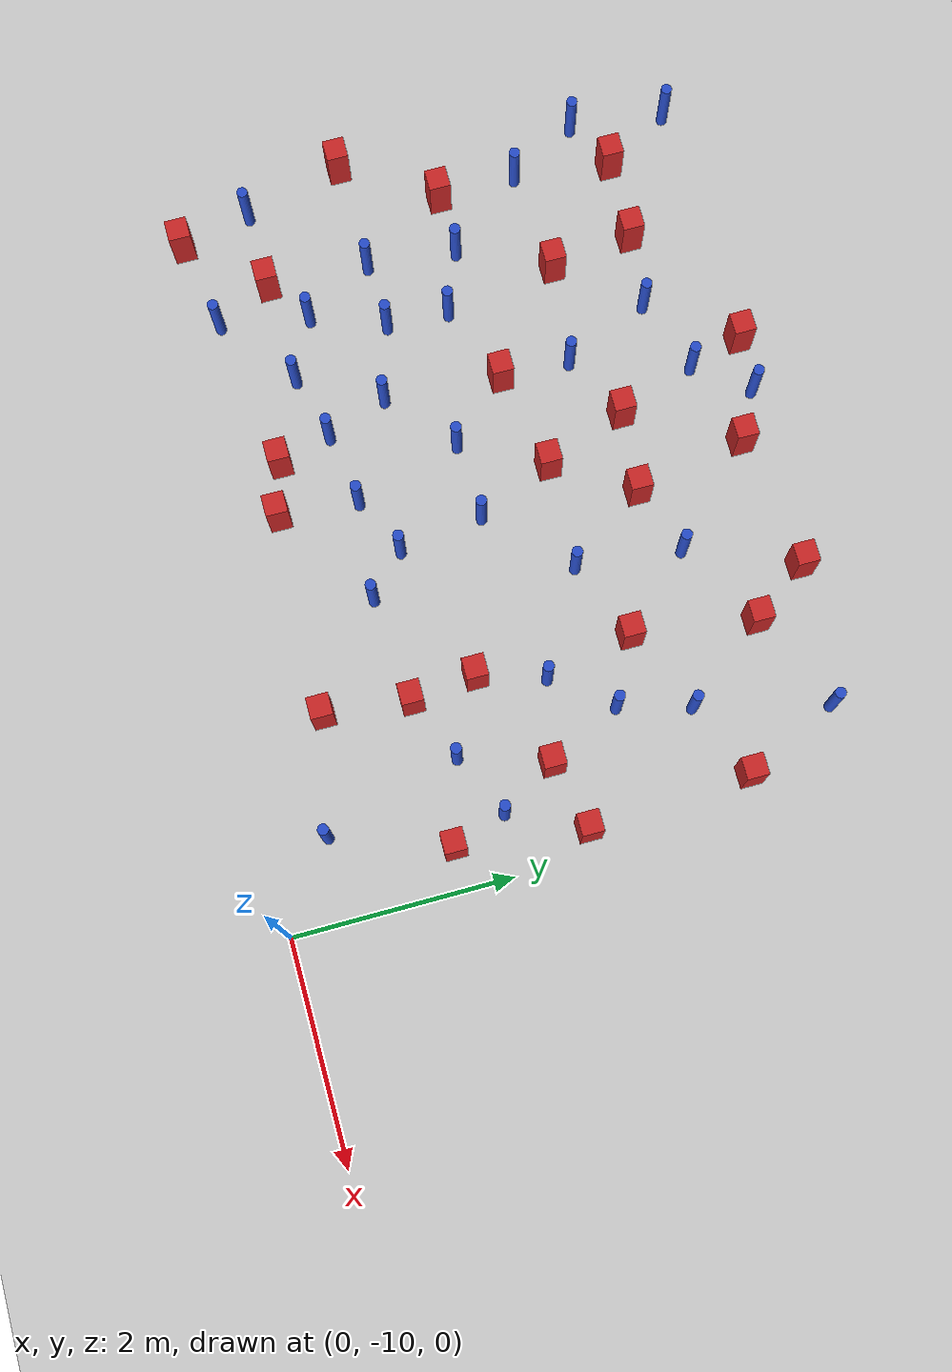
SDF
<sdf version="1.6">
 <world name="default">
  <model name="ground_plane">
   <static>1</static>
   <link name="link">
    <collision name="collision">
     <geometry><plane><normal>0 0 1</normal><size>100 100</size></plane></geometry>
     <surface><friction><ode><mu>100</mu><mu2>50</mu2></ode></friction></surface>
    </collision>
    <visual name="visual">
     <cast_shadows>0</cast_shadows>
     <geometry><plane><normal>0 0 1</normal><size>100 100</size></plane></geometry>
     <material>
      <ambient>1.0 1.0 1.0 1.0</ambient>
      <diffuse>0.8 0.8 0.8 1.0</diffuse>
      <specular>0.01 0.01 0.01 1.000000</specular>
     </material>
    </visual>
   </link>
  </model>
  <model name="pole_obstacle1">
   <static>true</static>
   <pose>-5.62566144421 -9.2903090047 -9.47619616065e-06 5.49618799737e-07 2.36310414065e-07 -1.55090534796e-07</pose>
   <link name="link">
    <pose>0 0 0.3 0 -0 0</pose>
    <inertial>
     <mass>1</mass>
     <inertia><ixx>0.145833</ixx><ixy>0</ixy><ixz>0</ixz><iyy>0.145833</iyy><iyz>0</iyz><izz>0.125</izz></inertia>
    </inertial>
    <collision name="collision">
     <geometry><cylinder><radius>0.05</radius><length>.6</length></cylinder></geometry>
    </collision>
    <visual name="visual">
     <geometry><cylinder><radius>0.05</radius><length>.6</length></cylinder></geometry>
     <material>
      <script><name>Gazebo/Blue</name><uri>file://media/materials/scripts/gazebo.material</uri></script>
     </material>
    </visual>
   </link>
  </model>
  <model name="pole_obstacle2">
   <static>true</static>
   <pose>-1.60684436853 -7.26357903362 -9.47619616065e-06 5.49618799737e-07 2.36310414061e-07 -1.550905348e-07</pose>
   <link name="link">
    <pose>0 0 0.3 0 -0 0</pose>
    <inertial>
     <mass>1</mass>
     <inertia><ixx>0.145833</ixx><ixy>0</ixy><ixz>0</ixz><iyy>0.145833</iyy><iyz>0</iyz><izz>0.125</izz></inertia>
    </inertial>
    <collision name="collision">
     <geometry><cylinder><radius>0.05</radius><length>.6</length></cylinder></geometry>
    </collision>
    <visual name="visual">
     <geometry><cylinder><radius>0.05</radius><length>.6</length></cylinder></geometry>
     <material>
      <script><name>Gazebo/Blue</name><uri>file://media/materials/scripts/gazebo.material</uri></script>
     </material>
    </visual>
   </link>
  </model>
  <model name="pole_obstacle6">
   <static>true</static>
   <pose>-3.7279872868 -4.7146031591 -9.4761961606e-06 5.49618799729e-07 2.36310414006e-07 -1.55090534822e-07</pose>
   <link name="link">
    <pose>0 0 0.3 0 -0 0</pose>
    <inertial>
     <mass>1</mass>
     <inertia><ixx>0.145833</ixx><ixy>0</ixy><ixz>0</ixz><iyy>0.145833</iyy><iyz>0</iyz><izz>0.125</izz></inertia>
    </inertial>
    <collision name="collision">
     <geometry><cylinder><radius>0.05</radius><length>.6</length></cylinder></geometry>
    </collision>
    <visual name="visual">
     <geometry><cylinder><radius>0.05</radius><length>.6</length></cylinder></geometry>
     <material>
      <script><name>Gazebo/Blue</name><uri>file://media/materials/scripts/gazebo.material</uri></script>
     </material>
    </visual>
   </link>
  </model>
  <model name="pole_obstacle7">
   <static>true</static>
   <pose>-5.21866244766 -7.79326274848 -9.47619616065e-06 5.49618799737e-07 2.36310414037e-07 -1.55090534814e-07</pose>
   <link name="link">
    <pose>0 0 0.3 0 -0 0</pose>
    <inertial>
     <mass>1</mass>
     <inertia><ixx>0.145833</ixx><ixy>0</ixy><ixz>0</ixz><iyy>0.145833</iyy><iyz>0</iyz><izz>0.125</izz></inertia>
    </inertial>
    <collision name="collision">
     <geometry><cylinder><radius>0.05</radius><length>.6</length></cylinder></geometry>
    </collision>
    <visual name="visual">
     <geometry><cylinder><radius>0.05</radius><length>.6</length></cylinder></geometry>
     <material>
      <script><name>Gazebo/Blue</name><uri>file://media/materials/scripts/gazebo.material</uri></script>
     </material>
    </visual>
   </link>
  </model>
  <model name="square_post_obstacle16">
   <static>true</static>
   <pose>-4.17505439991 -9.06867833993 -6.11067671241e-07 -5.50515727128e-06 -8.79689657224e-07 2.37013304536e-05</pose>
   <link name="link">
    <pose>0 0 0.25 0 -0 0</pose>
    <inertial>
     <mass>100</mass>
     <inertia>
      <ixx>0.166667</ixx>
      <ixy>0</ixy>
      <ixz>0</ixz>
      <iyy>0.166667</iyy>
      <iyz>0</iyz>
      <izz>0.166667</izz>
     </inertia>
    </inertial>
    <collision name="collision"><geometry><box><size>.2 .2 .5</size></box></geometry></collision>
    <visual name="visual">
     <geometry><box><size>.2 .2 .5</size></box></geometry>
     <material>
      <script><name>Gazebo/Red</name><uri>file://media/materials/scripts/gazebo.material</uri></script>
     </material>
    </visual>
   </link>
  </model>
  <model name="pole_obstacle13">
   <static>true</static>
   <pose>-5.77130393373 -6.98679776958 -9.47619616065e-06 5.49618799737e-07 2.36310414037e-07 -1.55090534814e-07</pose>
   <link name="link">
    <pose>0 0 0.3 0 -0 0</pose>
    <inertial>
     <mass>1</mass>
     <inertia><ixx>0.145833</ixx><ixy>0</ixy><ixz>0</ixz><iyy>0.145833</iyy><iyz>0</iyz><izz>0.125</izz></inertia>
    </inertial>
    <collision name="collision">
     <geometry><cylinder><radius>0.05</radius><length>.6</length></cylinder></geometry>
    </collision>
    <visual name="visual">
     <geometry><cylinder><radius>0.05</radius><length>.6</length></cylinder></geometry>
     <material>
      <script><name>Gazebo/Blue</name><uri>file://media/materials/scripts/gazebo.material</uri></script>
     </material>
    </visual>
   </link>
  </model>
  <model name="pole_obstacle15">
   <static>true</static>
   <pose>-2.71424018267 -8.56463063946 -9.4761961606e-06 5.49618799729e-07 2.36310414e-07 -1.55090534824e-07</pose>
   <link name="link">
    <pose>0 0 0.3 0 -0 0</pose>
    <inertial>
     <mass>1</mass>
     <inertia><ixx>0.145833</ixx><ixy>0</ixy><ixz>0</ixz><iyy>0.145833</iyy><iyz>0</iyz><izz>0.125</izz></inertia>
    </inertial>
    <collision name="collision">
     <geometry><cylinder><radius>0.05</radius><length>.6</length></cylinder></geometry>
    </collision>
    <visual name="visual">
     <geometry><cylinder><radius>0.05</radius><length>.6</length></cylinder></geometry>
     <material>
      <script><name>Gazebo/Blue</name><uri>file://media/materials/scripts/gazebo.material</uri></script>
     </material>
    </visual>
   </link>
  </model>
  <model name="pole_obstacle33">
   <static>true</static>
   <pose>-3.92077550969 -7.47135426275 -9.47619616065e-06 5.49618799738e-07 2.3631041406e-07 -1.55090534801e-07</pose>
   <link name="link">
    <pose>0 0 0.3 0 -0 0</pose>
    <inertial>
     <mass>1</mass>
     <inertia><ixx>0.145833</ixx><ixy>0</ixy><ixz>0</ixz><iyy>0.145833</iyy><iyz>0</iyz><izz>0.125</izz></inertia>
    </inertial>
    <collision name="collision">
     <geometry><cylinder><radius>0.05</radius><length>.6</length></cylinder></geometry>
    </collision>
    <visual name="visual">
     <geometry><cylinder><radius>0.05</radius><length>.6</length></cylinder></geometry>
     <material>
      <script><name>Gazebo/Blue</name><uri>file://media/materials/scripts/gazebo.material</uri></script>
     </material>
    </visual>
   </link>
  </model>
  <model name="pole_obstacle35">
   <static>true</static>
   <pose>-5.19803971378 -7.21124628286 -9.47619616065e-06 5.49618799737e-07 2.36310414037e-07 -1.55090534814e-07</pose>
   <link name="link">
    <pose>0 0 0.3 0 -0 0</pose>
    <inertial>
     <mass>1</mass>
     <inertia><ixx>0.145833</ixx><ixy>0</ixy><ixz>0</ixz><iyy>0.145833</iyy><iyz>0</iyz><izz>0.125</izz></inertia>
    </inertial>
    <collision name="collision">
     <geometry><cylinder><radius>0.05</radius><length>.6</length></cylinder></geometry>
    </collision>
    <visual name="visual">
     <geometry><cylinder><radius>0.05</radius><length>.6</length></cylinder></geometry>
     <material>
      <script><name>Gazebo/Blue</name><uri>file://media/materials/scripts/gazebo.material</uri></script>
     </material>
    </visual>
   </link>
  </model>
  <model name="pole_obstacle36">
   <static>true</static>
   <pose>-6.63243833939 -8.776292694 -9.47619616065e-06 5.49618799737e-07 2.36310414065e-07 -1.55090534796e-07</pose>
   <link name="link">
    <pose>0 0 0.3 0 -0 0</pose>
    <inertial>
     <mass>1</mass>
     <inertia><ixx>0.145833</ixx><ixy>0</ixy><ixz>0</ixz><iyy>0.145833</iyy><iyz>0</iyz><izz>0.125</izz></inertia>
    </inertial>
    <collision name="collision">
     <geometry><cylinder><radius>0.05</radius><length>.6</length></cylinder></geometry>
    </collision>
    <visual name="visual">
     <geometry><cylinder><radius>0.05</radius><length>.6</length></cylinder></geometry>
     <material>
      <script><name>Gazebo/Blue</name><uri>file://media/materials/scripts/gazebo.material</uri></script>
     </material>
    </visual>
   </link>
  </model>
  <model name="square_post_obstacle48">
   <static>true</static>
   <pose>-1.63319176596 -5.32264013975 -6.11067671241e-07 -5.50515727128e-06 -8.79689657224e-07 2.37013304536e-05</pose>
   <link name="link">
    <pose>0 0 0.25 0 -0 0</pose>
    <inertial>
     <mass>100</mass>
     <inertia>
      <ixx>0.166667</ixx>
      <ixy>0</ixy>
      <ixz>0</ixz>
      <iyy>0.166667</iyy>
      <iyz>0</iyz>
      <izz>0.166667</izz>
     </inertia>
    </inertial>
    <collision name="collision"><geometry><box><size>.2 .2 .5</size></box></geometry></collision>
    <visual name="visual">
     <geometry><box><size>.2 .2 .5</size></box></geometry>
     <material>
      <script><name>Gazebo/Red</name><uri>file://media/materials/scripts/gazebo.material</uri></script>
     </material>
    </visual>
   </link>
  </model>
  <model name="square_post_obstacle50">
   <static>true</static>
   <pose>-1.79477543127 -7.87226750322 -6.11067671241e-07 -5.50515727128e-06 -8.79689657224e-07 2.37013304536e-05</pose>
   <link name="link">
    <pose>0 0 0.25 0 -0 0</pose>
    <inertial>
     <mass>100</mass>
     <inertia>
      <ixx>0.166667</ixx>
      <ixy>0</ixy>
      <ixz>0</ixz>
      <iyy>0.166667</iyy>
      <iyz>0</iyz>
      <izz>0.166667</izz>
     </inertia>
    </inertial>
    <collision name="collision"><geometry><box><size>.2 .2 .5</size></box></geometry></collision>
    <visual name="visual">
     <geometry><box><size>.2 .2 .5</size></box></geometry>
     <material>
      <script><name>Gazebo/Red</name><uri>file://media/materials/scripts/gazebo.material</uri></script>
     </material>
    </visual>
   </link>
  </model>
  <model name="square_post_obstacle65">
   <static>true</static>
   <pose>-4.45251236364 -6.91360348217 -6.11067671241e-07 -5.50515727128e-06 -8.79689657224e-07 2.37013304536e-05</pose>
   <link name="link">
    <pose>0 0 0.25 0 -0 0</pose>
    <inertial>
     <mass>100</mass>
     <inertia>
      <ixx>0.166667</ixx>
      <ixy>0</ixy>
      <ixz>0</ixz>
      <iyy>0.166667</iyy>
      <iyz>0</iyz>
      <izz>0.166667</izz>
     </inertia>
    </inertial>
    <collision name="collision"><geometry><box><size>.2 .2 .5</size></box></geometry></collision>
    <visual name="visual">
     <geometry><box><size>.2 .2 .5</size></box></geometry>
     <material>
      <script><name>Gazebo/Red</name><uri>file://media/materials/scripts/gazebo.material</uri></script>
     </material>
    </visual>
   </link>
  </model>
  <model name="square_post_obstacle67">
   <static>true</static>
   <pose>-5.37988006259 -6.16173062384 -6.11067671241e-07 -5.50515727128e-06 -8.79689657224e-07 2.37013304536e-05</pose>
   <link name="link">
    <pose>0 0 0.25 0 -0 0</pose>
    <inertial>
     <mass>100</mass>
     <inertia>
      <ixx>0.166667</ixx>
      <ixy>0</ixy>
      <ixz>0</ixz>
      <iyy>0.166667</iyy>
      <iyz>0</iyz>
      <izz>0.166667</izz>
     </inertia>
    </inertial>
    <collision name="collision"><geometry><box><size>.2 .2 .5</size></box></geometry></collision>
    <visual name="visual">
     <geometry><box><size>.2 .2 .5</size></box></geometry>
     <material>
      <script><name>Gazebo/Red</name><uri>file://media/materials/scripts/gazebo.material</uri></script>
     </material>
    </visual>
   </link>
  </model>
  <model name="square_post_obstacle68">
   <static>true</static>
   <pose>-3.82120131899 -5.94561437085 -6.11067671241e-07 -5.50515727128e-06 -8.79689657224e-07 2.37013304536e-05</pose>
   <link name="link">
    <pose>0 0 0.25 0 -0 0</pose>
    <inertial>
     <mass>100</mass>
     <inertia>
      <ixx>0.166667</ixx>
      <ixy>0</ixy>
      <ixz>0</ixz>
      <iyy>0.166667</iyy>
      <iyz>0</iyz>
      <izz>0.166667</izz>
     </inertia>
    </inertial>
    <collision name="collision"><geometry><box><size>.2 .2 .5</size></box></geometry></collision>
    <visual name="visual">
     <geometry><box><size>.2 .2 .5</size></box></geometry>
     <material>
      <script><name>Gazebo/Red</name><uri>file://media/materials/scripts/gazebo.material</uri></script>
     </material>
    </visual>
   </link>
  </model>
  <model name="square_post_obstacle69">
   <static>true</static>
   <pose>-1.80989761364 -9.25960081324 -6.11067671241e-07 -5.50515727128e-06 -8.79689657224e-07 2.37013304536e-05</pose>
   <link name="link">
    <pose>0 0 0.25 0 -0 0</pose>
    <inertial>
     <mass>100</mass>
     <inertia>
      <ixx>0.166667</ixx>
      <ixy>0</ixy>
      <ixz>0</ixz>
      <iyy>0.166667</iyy>
      <iyz>0</iyz>
      <izz>0.166667</izz>
     </inertia>
    </inertial>
    <collision name="collision"><geometry><box><size>.2 .2 .5</size></box></geometry></collision>
    <visual name="visual">
     <geometry><box><size>.2 .2 .5</size></box></geometry>
     <material>
      <script><name>Gazebo/Red</name><uri>file://media/materials/scripts/gazebo.material</uri></script>
     </material>
    </visual>
   </link>
  </model>
  <model name="pole_obstacle68">
   <static>true</static>
   <pose>-2.42721018313 -5.77601872924 -9.47619616065e-06 5.49618799738e-07 2.3631041406e-07 -1.55090534801e-07</pose>
   <link name="link">
    <pose>0 0 0.3 0 -0 0</pose>
    <inertial>
     <mass>1</mass>
     <inertia><ixx>0.145833</ixx><ixy>0</ixy><ixz>0</ixz><iyy>0.145833</iyy><iyz>0</iyz><izz>0.125</izz></inertia>
    </inertial>
    <collision name="collision">
     <geometry><cylinder><radius>0.05</radius><length>.6</length></cylinder></geometry>
    </collision>
    <visual name="visual">
     <geometry><cylinder><radius>0.05</radius><length>.6</length></cylinder></geometry>
     <material>
      <script><name>Gazebo/Blue</name><uri>file://media/materials/scripts/gazebo.material</uri></script>
     </material>
    </visual>
   </link>
  </model>
  <model name="pole_obstacle73">
   <static>true</static>
   <pose>-4.30318029397 -8.57283885457 -9.47619616065e-06 5.49618799737e-07 2.36310414065e-07 -1.55090534796e-07</pose>
   <link name="link">
    <pose>0 0 0.3 0 -0 0</pose>
    <inertial>
     <mass>1</mass>
     <inertia><ixx>0.145833</ixx><ixy>0</ixy><ixz>0</ixz><iyy>0.145833</iyy><iyz>0</iyz><izz>0.125</izz></inertia>
    </inertial>
    <collision name="collision">
     <geometry><cylinder><radius>0.05</radius><length>.6</length></cylinder></geometry>
    </collision>
    <visual name="visual">
     <geometry><cylinder><radius>0.05</radius><length>.6</length></cylinder></geometry>
     <material>
      <script><name>Gazebo/Blue</name><uri>file://media/materials/scripts/gazebo.material</uri></script>
     </material>
    </visual>
   </link>
  </model>
  <model name="pole_obstacle74">
   <static>true</static>
   <pose>-5.47850253976 -8.47016575966 -9.47619616065e-06 5.49618799737e-07 2.36310414065e-07 -1.55090534796e-07</pose>
   <link name="link">
    <pose>0 0 0.3 0 -0 0</pose>
    <inertial>
     <mass>1</mass>
     <inertia><ixx>0.145833</ixx><ixy>0</ixy><ixz>0</ixz><iyy>0.145833</iyy><iyz>0</iyz><izz>0.125</izz></inertia>
    </inertial>
    <collision name="collision">
     <geometry><cylinder><radius>0.05</radius><length>.6</length></cylinder></geometry>
    </collision>
    <visual name="visual">
     <geometry><cylinder><radius>0.05</radius><length>.6</length></cylinder></geometry>
     <material>
      <script><name>Gazebo/Blue</name><uri>file://media/materials/scripts/gazebo.material</uri></script>
     </material>
    </visual>
   </link>
  </model>
  <model name="pole_obstacle75">
   <static>true</static>
   <pose>-1.02069164233 -6.0942205276 -9.47619616065e-06 5.49618799737e-07 2.36310414062e-07 -1.55090534799e-07</pose>
   <link name="link">
    <pose>0 0 0.3 0 -0 0</pose>
    <inertial>
     <mass>1</mass>
     <inertia><ixx>0.145833</ixx><ixy>0</ixy><ixz>0</ixz><iyy>0.145833</iyy><iyz>0</iyz><izz>0.125</izz></inertia>
    </inertial>
    <collision name="collision">
     <geometry><cylinder><radius>0.05</radius><length>.6</length></cylinder></geometry>
    </collision>
    <visual name="visual">
     <geometry><cylinder><radius>0.05</radius><length>.6</length></cylinder></geometry>
     <material>
      <script><name>Gazebo/Blue</name><uri>file://media/materials/scripts/gazebo.material</uri></script>
     </material>
    </visual>
   </link>
  </model>
  <model name="pole_obstacle78">
   <static>true</static>
   <pose>-6.61473990587 -4.72280272975 -9.47619616065e-06 5.49618799737e-07 2.36310414037e-07 -1.55090534814e-07</pose>
   <link name="link">
    <pose>0 0 0.3 0 -0 0</pose>
    <inertial>
     <mass>1</mass>
     <inertia><ixx>0.145833</ixx><ixy>0</ixy><ixz>0</ixz><iyy>0.145833</iyy><iyz>0</iyz><izz>0.125</izz></inertia>
    </inertial>
    <collision name="collision">
     <geometry><cylinder><radius>0.05</radius><length>.6</length></cylinder></geometry>
    </collision>
    <visual name="visual">
     <geometry><cylinder><radius>0.05</radius><length>.6</length></cylinder></geometry>
     <material>
      <script><name>Gazebo/Blue</name><uri>file://media/materials/scripts/gazebo.material</uri></script>
     </material>
    </visual>
   </link>
  </model>
  <model name="square_post_obstacle79">
   <static>true</static>
   <pose>-0.866047097924 -7.42888127784 -6.11067671241e-07 -5.50515727128e-06 -8.79689657224e-07 2.37013304536e-05</pose>
   <link name="link">
    <pose>0 0 0.25 0 -0 0</pose>
    <inertial>
     <mass>100</mass>
     <inertia>
      <ixx>0.166667</ixx>
      <ixy>0</ixy>
      <ixz>0</ixz>
      <iyy>0.166667</iyy>
      <iyz>0</iyz>
      <izz>0.166667</izz>
     </inertia>
    </inertial>
    <collision name="collision"><geometry><box><size>.2 .2 .5</size></box></geometry></collision>
    <visual name="visual">
     <geometry><box><size>.2 .2 .5</size></box></geometry>
     <material>
      <script><name>Gazebo/Red</name><uri>file://media/materials/scripts/gazebo.material</uri></script>
     </material>
    </visual>
   </link>
  </model>
  <model name="pole_obstacle84">
   <static>true</static>
   <pose>-1.12393732059 -8.21846370936 -9.47619616065e-06 5.49618799737e-07 2.36310414046e-07 -1.55090534809e-07</pose>
   <link name="link">
    <pose>0 0 0.3 0 -0 0</pose>
    <inertial>
     <mass>1</mass>
     <inertia><ixx>0.145833</ixx><ixy>0</ixy><ixz>0</ixz><iyy>0.145833</iyy><iyz>0</iyz><izz>0.125</izz></inertia>
    </inertial>
    <collision name="collision">
     <geometry><cylinder><radius>0.05</radius><length>.6</length></cylinder></geometry>
    </collision>
    <visual name="visual">
     <geometry><cylinder><radius>0.05</radius><length>.6</length></cylinder></geometry>
     <material>
      <script><name>Gazebo/Blue</name><uri>file://media/materials/scripts/gazebo.material</uri></script>
     </material>
    </visual>
   </link>
  </model>
  <model name="square_post_obstacle81">
   <static>true</static>
   <pose>-1.79641551535 -6.44982777448 -6.11067671241e-07 -5.50515727128e-06 -8.79689657224e-07 2.37013304536e-05</pose>
   <link name="link">
    <pose>0 0 0.25 0 -0 0</pose>
    <inertial>
     <mass>100</mass>
     <inertia>
      <ixx>0.166667</ixx>
      <ixy>0</ixy>
      <ixz>0</ixz>
      <iyy>0.166667</iyy>
      <iyz>0</iyz>
      <izz>0.166667</izz>
     </inertia>
    </inertial>
    <collision name="collision"><geometry><box><size>.2 .2 .5</size></box></geometry></collision>
    <visual name="visual">
     <geometry><box><size>.2 .2 .5</size></box></geometry>
     <material>
      <script><name>Gazebo/Red</name><uri>file://media/materials/scripts/gazebo.material</uri></script>
     </material>
    </visual>
   </link>
  </model>
  <model name="pole_obstacle90">
   <static>true</static>
   <pose>-3.20133660519 -7.43433085295 -9.47619616065e-06 5.49618799738e-07 2.3631041406e-07 -1.55090534801e-07</pose>
   <link name="link">
    <pose>0 0 0.3 0 -0 0</pose>
    <inertial>
     <mass>1</mass>
     <inertia><ixx>0.145833</ixx><ixy>0</ixy><ixz>0</ixz><iyy>0.145833</iyy><iyz>0</iyz><izz>0.125</izz></inertia>
    </inertial>
    <collision name="collision">
     <geometry><cylinder><radius>0.05</radius><length>.6</length></cylinder></geometry>
    </collision>
    <visual name="visual">
     <geometry><cylinder><radius>0.05</radius><length>.6</length></cylinder></geometry>
     <material>
      <script><name>Gazebo/Blue</name><uri>file://media/materials/scripts/gazebo.material</uri></script>
     </material>
    </visual>
   </link>
  </model>
  <model name="pole_obstacle92">
   <static>true</static>
   <pose>-4.08983680371 -5.19626457818 -9.47619616065e-06 5.49618799737e-07 2.36310414037e-07 -1.55090534814e-07</pose>
   <link name="link">
    <pose>0 0 0.3 0 -0 0</pose>
    <inertial>
     <mass>1</mass>
     <inertia><ixx>0.145833</ixx><ixy>0</ixy><ixz>0</ixz><iyy>0.145833</iyy><iyz>0</iyz><izz>0.125</izz></inertia>
    </inertial>
    <collision name="collision">
     <geometry><cylinder><radius>0.05</radius><length>.6</length></cylinder></geometry>
    </collision>
    <visual name="visual">
     <geometry><cylinder><radius>0.05</radius><length>.6</length></cylinder></geometry>
     <material>
      <script><name>Gazebo/Blue</name><uri>file://media/materials/scripts/gazebo.material</uri></script>
     </material>
    </visual>
   </link>
  </model>
  <model name="square_post_obstacle85">
   <static>true</static>
   <pose>-6.25682447948 -5.36066276303 -6.11067671241e-07 -5.50515727128e-06 -8.79689657224e-07 2.37013304536e-05</pose>
   <link name="link">
    <pose>0 0 0.25 0 -0 0</pose>
    <inertial>
     <mass>100</mass>
     <inertia>
      <ixx>0.166667</ixx>
      <ixy>0</ixy>
      <ixz>0</ixz>
      <iyy>0.166667</iyy>
      <iyz>0</iyz>
      <izz>0.166667</izz>
     </inertia>
    </inertial>
    <collision name="collision"><geometry><box><size>.2 .2 .5</size></box></geometry></collision>
    <visual name="visual">
     <geometry><box><size>.2 .2 .5</size></box></geometry>
     <material>
      <script><name>Gazebo/Red</name><uri>file://media/materials/scripts/gazebo.material</uri></script>
     </material>
    </visual>
   </link>
  </model>
  <model name="square_post_obstacle87">
   <static>true</static>
   <pose>-0.320524865567 -5.78584989438 -6.11067671241e-07 -5.50515727128e-06 -8.79689657224e-07 2.37013304536e-05</pose>
   <link name="link">
    <pose>0 0 0.25 0 -0 0</pose>
    <inertial>
     <mass>100</mass>
     <inertia>
      <ixx>0.166667</ixx>
      <ixy>0</ixy>
      <ixz>0</ixz>
      <iyy>0.166667</iyy>
      <iyz>0</iyz>
      <izz>0.166667</izz>
     </inertia>
    </inertial>
    <collision name="collision"><geometry><box><size>.2 .2 .5</size></box></geometry></collision>
    <visual name="visual">
     <geometry><box><size>.2 .2 .5</size></box></geometry>
     <material>
      <script><name>Gazebo/Red</name><uri>file://media/materials/scripts/gazebo.material</uri></script>
     </material>
    </visual>
   </link>
  </model>
  <model name="pole_obstacle97">
   <static>true</static>
   <pose>-2.52878332249 -6.74475736657 -9.47619616065e-06 5.49618799738e-07 2.3631041406e-07 -1.55090534801e-07</pose>
   <link name="link">
    <pose>0 0 0.3 0 -0 0</pose>
    <inertial>
     <mass>1</mass>
     <inertia><ixx>0.145833</ixx><ixy>0</ixy><ixz>0</ixz><iyy>0.145833</iyy><iyz>0</iyz><izz>0.125</izz></inertia>
    </inertial>
    <collision name="collision">
     <geometry><cylinder><radius>0.05</radius><length>.6</length></cylinder></geometry>
    </collision>
    <visual name="visual">
     <geometry><cylinder><radius>0.05</radius><length>.6</length></cylinder></geometry>
     <material>
      <script><name>Gazebo/Blue</name><uri>file://media/materials/scripts/gazebo.material</uri></script>
     </material>
    </visual>
   </link>
  </model>
  <model name="pole_obstacle100">
   <static>true</static>
   <pose>-6.72402525693 -5.60651839123 -9.47619616065e-06 5.49618799737e-07 2.36310414037e-07 -1.55090534814e-07</pose>
   <link name="link">
    <pose>0 0 0.3 0 -0 0</pose>
    <inertial>
     <mass>1</mass>
     <inertia><ixx>0.145833</ixx><ixy>0</ixy><ixz>0</ixz><iyy>0.145833</iyy><iyz>0</iyz><izz>0.125</izz></inertia>
    </inertial>
    <collision name="collision">
     <geometry><cylinder><radius>0.05</radius><length>.6</length></cylinder></geometry>
    </collision>
    <visual name="visual">
     <geometry><cylinder><radius>0.05</radius><length>.6</length></cylinder></geometry>
     <material>
      <script><name>Gazebo/Blue</name><uri>file://media/materials/scripts/gazebo.material</uri></script>
     </material>
    </visual>
   </link>
  </model>
  <model name="pole_obstacle104">
   <static>true</static>
   <pose>-4.43302395266 -6.26138263806 -9.47619616065e-06 5.49618799737e-07 2.36310414037e-07 -1.55090534814e-07</pose>
   <link name="link">
    <pose>0 0 0.3 0 -0 0</pose>
    <inertial>
     <mass>1</mass>
     <inertia><ixx>0.145833</ixx><ixy>0</ixy><ixz>0</ixz><iyy>0.145833</iyy><iyz>0</iyz><izz>0.125</izz></inertia>
    </inertial>
    <collision name="collision">
     <geometry><cylinder><radius>0.05</radius><length>.6</length></cylinder></geometry>
    </collision>
    <visual name="visual">
     <geometry><cylinder><radius>0.05</radius><length>.6</length></cylinder></geometry>
     <material>
      <script><name>Gazebo/Blue</name><uri>file://media/materials/scripts/gazebo.material</uri></script>
     </material>
    </visual>
   </link>
  </model>
  <model name="square_post_obstacle93">
   <static>true</static>
   <pose>-5.49107215724 -5.38362242229 -6.11067671241e-07 -5.50515727128e-06 -8.79689657224e-07 2.37013304536e-05</pose>
   <link name="link">
    <pose>0 0 0.25 0 -0 0</pose>
    <inertial>
     <mass>100</mass>
     <inertia>
      <ixx>0.166667</ixx>
      <ixy>0</ixy>
      <ixz>0</ixz>
      <iyy>0.166667</iyy>
      <iyz>0</iyz>
      <izz>0.166667</izz>
     </inertia>
    </inertial>
    <collision name="collision"><geometry><box><size>.2 .2 .5</size></box></geometry></collision>
    <visual name="visual">
     <geometry><box><size>.2 .2 .5</size></box></geometry>
     <material>
      <script><name>Gazebo/Red</name><uri>file://media/materials/scripts/gazebo.material</uri></script>
     </material>
    </visual>
   </link>
  </model>
  <model name="pole_obstacle105">
   <static>true</static>
   <pose>-3.08377220342 -8.22042913762 -9.47619616065e-06 5.49618799738e-07 2.36310414059e-07 -1.55090534802e-07</pose>
   <link name="link">
    <pose>0 0 0.3 0 -0 0</pose>
    <inertial>
     <mass>1</mass>
     <inertia><ixx>0.145833</ixx><ixy>0</ixy><ixz>0</ixz><iyy>0.145833</iyy><iyz>0</iyz><izz>0.125</izz></inertia>
    </inertial>
    <collision name="collision">
     <geometry><cylinder><radius>0.05</radius><length>.6</length></cylinder></geometry>
    </collision>
    <visual name="visual">
     <geometry><cylinder><radius>0.05</radius><length>.6</length></cylinder></geometry>
     <material>
      <script><name>Gazebo/Blue</name><uri>file://media/materials/scripts/gazebo.material</uri></script>
     </material>
    </visual>
   </link>
  </model>
  <model name="square_post_obstacle98">
   <static>true</static>
   <pose>-3.28452838358 -4.96140511353 -6.11067671241e-07 -5.50515727128e-06 -8.79689657224e-07 2.37013304536e-05</pose>
   <link name="link">
    <pose>0 0 0.25 0 -0 0</pose>
    <inertial>
     <mass>100</mass>
     <inertia>
      <ixx>0.166667</ixx>
      <ixy>0</ixy>
      <ixz>0</ixz>
      <iyy>0.166667</iyy>
      <iyz>0</iyz>
      <izz>0.166667</izz>
     </inertia>
    </inertial>
    <collision name="collision"><geometry><box><size>.2 .2 .5</size></box></geometry></collision>
    <visual name="visual">
     <geometry><box><size>.2 .2 .5</size></box></geometry>
     <material>
      <script><name>Gazebo/Red</name><uri>file://media/materials/scripts/gazebo.material</uri></script>
     </material>
    </visual>
   </link>
  </model>
  <model name="pole_obstacle113">
   <static>true</static>
   <pose>-1.19777374966 -6.74569774307 -9.47619616065e-06 5.49618799737e-07 2.36310414061e-07 -1.550905348e-07</pose>
   <link name="link">
    <pose>0 0 0.3 0 -0 0</pose>
    <inertial>
     <mass>1</mass>
     <inertia><ixx>0.145833</ixx><ixy>0</ixy><ixz>0</ixz><iyy>0.145833</iyy><iyz>0</iyz><izz>0.125</izz></inertia>
    </inertial>
    <collision name="collision">
     <geometry><cylinder><radius>0.05</radius><length>.6</length></cylinder></geometry>
    </collision>
    <visual name="visual">
     <geometry><cylinder><radius>0.05</radius><length>.6</length></cylinder></geometry>
     <material>
      <script><name>Gazebo/Blue</name><uri>file://media/materials/scripts/gazebo.material</uri></script>
     </material>
    </visual>
   </link>
  </model>
  <model name="square_post_obstacle105">
   <static>true</static>
   <pose>-3.68661251421 -9.20158420091 -6.11067671241e-07 -5.50515727128e-06 -8.79689657224e-07 2.37013304536e-05</pose>
   <link name="link">
    <pose>0 0 0.25 0 -0 0</pose>
    <inertial>
     <mass>100</mass>
     <inertia>
      <ixx>0.166667</ixx>
      <ixy>0</ixy>
      <ixz>0</ixz>
      <iyy>0.166667</iyy>
      <iyz>0</iyz>
      <izz>0.166667</izz>
     </inertia>
    </inertial>
    <collision name="collision"><geometry><box><size>.2 .2 .5</size></box></geometry></collision>
    <visual name="visual">
     <geometry><box><size>.2 .2 .5</size></box></geometry>
     <material>
      <script><name>Gazebo/Red</name><uri>file://media/materials/scripts/gazebo.material</uri></script>
     </material>
    </visual>
   </link>
  </model>
  <model name="square_post_obstacle110">
   <static>true</static>
   <pose>-1.72377608352 -8.47191996005 -6.11067671241e-07 -5.50515727128e-06 -8.79689657224e-07 2.37013304536e-05</pose>
   <link name="link">
    <pose>0 0 0.25 0 -0 0</pose>
    <inertial>
     <mass>100</mass>
     <inertia>
      <ixx>0.166667</ixx>
      <ixy>0</ixy>
      <ixz>0</ixz>
      <iyy>0.166667</iyy>
      <iyz>0</iyz>
      <izz>0.166667</izz>
     </inertia>
    </inertial>
    <collision name="collision"><geometry><box><size>.2 .2 .5</size></box></geometry></collision>
    <visual name="visual">
     <geometry><box><size>.2 .2 .5</size></box></geometry>
     <material>
      <script><name>Gazebo/Red</name><uri>file://media/materials/scripts/gazebo.material</uri></script>
     </material>
    </visual>
   </link>
  </model>
  <model name="pole_obstacle134">
   <static>true</static>
   <pose>-6.36175235665 -6.25913780738 -9.47619616065e-06 5.49618799737e-07 2.36310414037e-07 -1.55090534814e-07</pose>
   <link name="link">
    <pose>0 0 0.3 0 -0 0</pose>
    <inertial>
     <mass>1</mass>
     <inertia><ixx>0.145833</ixx><ixy>0</ixy><ixz>0</ixz><iyy>0.145833</iyy><iyz>0</iyz><izz>0.125</izz></inertia>
    </inertial>
    <collision name="collision">
     <geometry><cylinder><radius>0.05</radius><length>.6</length></cylinder></geometry>
    </collision>
    <visual name="visual">
     <geometry><cylinder><radius>0.05</radius><length>.6</length></cylinder></geometry>
     <material>
      <script><name>Gazebo/Blue</name><uri>file://media/materials/scripts/gazebo.material</uri></script>
     </material>
    </visual>
   </link>
  </model>
  <model name="pole_obstacle140">
   <static>true</static>
   <pose>-5.84636212881 -7.82079949891 -9.47619616065e-06 5.49618799737e-07 2.36310414037e-07 -1.55090534814e-07</pose>
   <link name="link">
    <pose>0 0 0.3 0 -0 0</pose>
    <inertial>
     <mass>1</mass>
     <inertia><ixx>0.145833</ixx><ixy>0</ixy><ixz>0</ixz><iyy>0.145833</iyy><iyz>0</iyz><izz>0.125</izz></inertia>
    </inertial>
    <collision name="collision">
     <geometry><cylinder><radius>0.05</radius><length>.6</length></cylinder></geometry>
    </collision>
    <visual name="visual">
     <geometry><cylinder><radius>0.05</radius><length>.6</length></cylinder></geometry>
     <material>
      <script><name>Gazebo/Blue</name><uri>file://media/materials/scripts/gazebo.material</uri></script>
     </material>
    </visual>
   </link>
  </model>
  <model name="square_post_obstacle127">
   <static>true</static>
   <pose>-0.383111291779 -8.44251301551 -6.11067671241e-07 -5.50515727128e-06 -8.79689657224e-07 2.37013304536e-05</pose>
   <link name="link">
    <pose>0 0 0.25 0 -0 0</pose>
    <inertial>
     <mass>100</mass>
     <inertia>
      <ixx>0.166667</ixx>
      <ixy>0</ixy>
      <ixz>0</ixz>
      <iyy>0.166667</iyy>
      <iyz>0</iyz>
      <izz>0.166667</izz>
     </inertia>
    </inertial>
    <collision name="collision"><geometry><box><size>.2 .2 .5</size></box></geometry></collision>
    <visual name="visual">
     <geometry><box><size>.2 .2 .5</size></box></geometry>
     <material>
      <script><name>Gazebo/Red</name><uri>file://media/materials/scripts/gazebo.material</uri></script>
     </material>
    </visual>
   </link>
  </model>
  <model name="square_post_obstacle133">
   <static>true</static>
   <pose>-3.5159700851 -6.72271562225 -6.11067671241e-07 -5.50515727128e-06 -8.79689657224e-07 2.37013304536e-05</pose>
   <link name="link">
    <pose>0 0 0.25 0 -0 0</pose>
    <inertial>
     <mass>100</mass>
     <inertia>
      <ixx>0.166667</ixx>
      <ixy>0</ixy>
      <ixz>0</ixz>
      <iyy>0.166667</iyy>
      <iyz>0</iyz>
      <izz>0.166667</izz>
     </inertia>
    </inertial>
    <collision name="collision"><geometry><box><size>.2 .2 .5</size></box></geometry></collision>
    <visual name="visual">
     <geometry><box><size>.2 .2 .5</size></box></geometry>
     <material>
      <script><name>Gazebo/Red</name><uri>file://media/materials/scripts/gazebo.material</uri></script>
     </material>
    </visual>
   </link>
  </model>
  <model name="pole_obstacle144">
   <static>true</static>
   <pose>-4.79666371894 -5.44731565612 -9.47619616065e-06 5.49618799737e-07 2.36310414037e-07 -1.55090534814e-07</pose>
   <link name="link">
    <pose>0 0 0.3 0 -0 0</pose>
    <inertial>
     <mass>1</mass>
     <inertia><ixx>0.145833</ixx><ixy>0</ixy><ixz>0</ixz><iyy>0.145833</iyy><iyz>0</iyz><izz>0.125</izz></inertia>
    </inertial>
    <collision name="collision">
     <geometry><cylinder><radius>0.05</radius><length>.6</length></cylinder></geometry>
    </collision>
    <visual name="visual">
     <geometry><cylinder><radius>0.05</radius><length>.6</length></cylinder></geometry>
     <material>
      <script><name>Gazebo/Blue</name><uri>file://media/materials/scripts/gazebo.material</uri></script>
     </material>
    </visual>
   </link>
  </model>
  <model name="square_post_obstacle134">
   <static>true</static>
   <pose>-5.89463694383 -8.76450780333 -6.11067671241e-07 -5.50515727128e-06 -8.79689657224e-07 2.37013304536e-05</pose>
   <link name="link">
    <pose>0 0 0.25 0 -0 0</pose>
    <inertial>
     <mass>100</mass>
     <inertia>
      <ixx>0.166667</ixx>
      <ixy>0</ixy>
      <ixz>0</ixz>
      <iyy>0.166667</iyy>
      <iyz>0</iyz>
      <izz>0.166667</izz>
     </inertia>
    </inertial>
    <collision name="collision"><geometry><box><size>.2 .2 .5</size></box></geometry></collision>
    <visual name="visual">
     <geometry><box><size>.2 .2 .5</size></box></geometry>
     <material>
      <script><name>Gazebo/Red</name><uri>file://media/materials/scripts/gazebo.material</uri></script>
     </material>
    </visual>
   </link>
  </model>
  <model name="square_post_obstacle140">
   <static>true</static>
   <pose>-6.88818472779 -7.8431709429 -6.11067671241e-07 -5.50515727128e-06 -8.79689657224e-07 2.37013304536e-05</pose>
   <link name="link">
    <pose>0 0 0.25 0 -0 0</pose>
    <inertial>
     <mass>100</mass>
     <inertia>
      <ixx>0.166667</ixx>
      <ixy>0</ixy>
      <ixz>0</ixz>
      <iyy>0.166667</iyy>
      <iyz>0</iyz>
      <izz>0.166667</izz>
     </inertia>
    </inertial>
    <collision name="collision"><geometry><box><size>.2 .2 .5</size></box></geometry></collision>
    <visual name="visual">
     <geometry><box><size>.2 .2 .5</size></box></geometry>
     <material>
      <script><name>Gazebo/Red</name><uri>file://media/materials/scripts/gazebo.material</uri></script>
     </material>
    </visual>
   </link>
  </model>
  <model name="pole_obstacle164">
   <static>true</static>
   <pose>-3.62477088052 -8.4685498704 -9.4761961606e-06 5.49618799729e-07 2.36310414e-07 -1.55090534824e-07</pose>
   <link name="link">
    <pose>0 0 0.3 0 -0 0</pose>
    <inertial>
     <mass>1</mass>
     <inertia><ixx>0.145833</ixx><ixy>0</ixy><ixz>0</ixz><iyy>0.145833</iyy><iyz>0</iyz><izz>0.125</izz></inertia>
    </inertial>
    <collision name="collision">
     <geometry><cylinder><radius>0.05</radius><length>.6</length></cylinder></geometry>
    </collision>
    <visual name="visual">
     <geometry><cylinder><radius>0.05</radius><length>.6</length></cylinder></geometry>
     <material>
      <script><name>Gazebo/Blue</name><uri>file://media/materials/scripts/gazebo.material</uri></script>
     </material>
    </visual>
   </link>
  </model>
  <model name="pole_obstacle165">
   <static>true</static>
   <pose>-4.52235506052 -7.99932443243 -9.47619616065e-06 5.49618799738e-07 2.36310414051e-07 -1.55090534804e-07</pose>
   <link name="link">
    <pose>0 0 0.3 0 -0 0</pose>
    <inertial>
     <mass>1</mass>
     <inertia><ixx>0.145833</ixx><ixy>0</ixy><ixz>0</ixz><iyy>0.145833</iyy><iyz>0</iyz><izz>0.125</izz></inertia>
    </inertial>
    <collision name="collision">
     <geometry><cylinder><radius>0.05</radius><length>.6</length></cylinder></geometry>
    </collision>
    <visual name="visual">
     <geometry><cylinder><radius>0.05</radius><length>.6</length></cylinder></geometry>
     <material>
      <script><name>Gazebo/Blue</name><uri>file://media/materials/scripts/gazebo.material</uri></script>
     </material>
    </visual>
   </link>
  </model>
  <model name="pole_obstacle175">
   <static>true</static>
   <pose>-0.541864961063 -7.94654604485 -9.47619616065e-06 5.49618799737e-07 2.36310414069e-07 -1.55090534794e-07</pose>
   <link name="link">
    <pose>0 0 0.3 0 -0 0</pose>
    <inertial>
     <mass>1</mass>
     <inertia><ixx>0.145833</ixx><ixy>0</ixy><ixz>0</ixz><iyy>0.145833</iyy><iyz>0</iyz><izz>0.125</izz></inertia>
    </inertial>
    <collision name="collision">
     <geometry><cylinder><radius>0.05</radius><length>.6</length></cylinder></geometry>
    </collision>
    <visual name="visual">
     <geometry><cylinder><radius>0.05</radius><length>.6</length></cylinder></geometry>
     <material>
      <script><name>Gazebo/Blue</name><uri>file://media/materials/scripts/gazebo.material</uri></script>
     </material>
    </visual>
   </link>
  </model>
  <model name="pole_obstacle176">
   <static>true</static>
   <pose>-0.74758642755 -9.48146596997 -9.47619616065e-06 5.49618799737e-07 2.36310414038e-07 -1.55090534813e-07</pose>
   <link name="link">
    <pose>0 0 0.3 0 -0 0</pose>
    <inertial>
     <mass>1</mass>
     <inertia><ixx>0.145833</ixx><ixy>0</ixy><ixz>0</ixz><iyy>0.145833</iyy><iyz>0</iyz><izz>0.125</izz></inertia>
    </inertial>
    <collision name="collision">
     <geometry><cylinder><radius>0.05</radius><length>.6</length></cylinder></geometry>
    </collision>
    <visual name="visual">
     <geometry><cylinder><radius>0.05</radius><length>.6</length></cylinder></geometry>
     <material>
      <script><name>Gazebo/Blue</name><uri>file://media/materials/scripts/gazebo.material</uri></script>
     </material>
    </visual>
   </link>
  </model>
  <model name="square_post_obstacle167">
   <static>true</static>
   <pose>-4.24630409412 -4.69327267229 -6.11067671241e-07 -5.50515727128e-06 -8.79689657224e-07 2.37013304536e-05</pose>
   <link name="link">
    <pose>0 0 0.25 0 -0 0</pose>
    <inertial>
     <mass>100</mass>
     <inertia>
      <ixx>0.166667</ixx>
      <ixy>0</ixy>
      <ixz>0</ixz>
      <iyy>0.166667</iyy>
      <iyz>0</iyz>
      <izz>0.166667</izz>
     </inertia>
    </inertial>
    <collision name="collision"><geometry><box><size>.2 .2 .5</size></box></geometry></collision>
    <visual name="visual">
     <geometry><box><size>.2 .2 .5</size></box></geometry>
     <material>
      <script><name>Gazebo/Red</name><uri>file://media/materials/scripts/gazebo.material</uri></script>
     </material>
    </visual>
   </link>
  </model>
  <model name="pole_obstacle180">
   <static>true</static>
   <pose>-4.92145749418 -8.73758671699 -9.47619616065e-06 5.49618799737e-07 2.36310414065e-07 -1.55090534796e-07</pose>
   <link name="link">
    <pose>0 0 0.3 0 -0 0</pose>
    <inertial>
     <mass>1</mass>
     <inertia><ixx>0.145833</ixx><ixy>0</ixy><ixz>0</ixz><iyy>0.145833</iyy><iyz>0</iyz><izz>0.125</izz></inertia>
    </inertial>
    <collision name="collision">
     <geometry><cylinder><radius>0.05</radius><length>.6</length></cylinder></geometry>
    </collision>
    <visual name="visual">
     <geometry><cylinder><radius>0.05</radius><length>.6</length></cylinder></geometry>
     <material>
      <script><name>Gazebo/Blue</name><uri>file://media/materials/scripts/gazebo.material</uri></script>
     </material>
    </visual>
   </link>
  </model>
  <model name="pole_obstacle183">
   <static>true</static>
   <pose>-0.721339447493 -4.90916748225 -9.47619616065e-06 5.49618799737e-07 2.36310414065e-07 -1.55090534796e-07</pose>
   <link name="link">
    <pose>0 0 0.3 0 -0 0</pose>
    <inertial>
     <mass>1</mass>
     <inertia><ixx>0.145833</ixx><ixy>0</ixy><ixz>0</ixz><iyy>0.145833</iyy><iyz>0</iyz><izz>0.125</izz></inertia>
    </inertial>
    <collision name="collision">
     <geometry><cylinder><radius>0.05</radius><length>.6</length></cylinder></geometry>
    </collision>
    <visual name="visual">
     <geometry><cylinder><radius>0.05</radius><length>.6</length></cylinder></geometry>
     <material>
      <script><name>Gazebo/Blue</name><uri>file://media/materials/scripts/gazebo.material</uri></script>
     </material>
    </visual>
   </link>
  </model>
  <model name="square_post_obstacle173">
   <static>true</static>
   <pose>-6.4860177124 -9.43925873216 -6.11067671241e-07 -5.50515727128e-06 -8.79689657224e-07 2.37013304536e-05</pose>
   <link name="link">
    <pose>0 0 0.25 0 -0 0</pose>
    <inertial>
     <mass>100</mass>
     <inertia>
      <ixx>0.166667</ixx>
      <ixy>0</ixy>
      <ixz>0</ixz>
      <iyy>0.166667</iyy>
      <iyz>0</iyz>
      <izz>0.166667</izz>
     </inertia>
    </inertial>
    <collision name="collision"><geometry><box><size>.2 .2 .5</size></box></geometry></collision>
    <visual name="visual">
     <geometry><box><size>.2 .2 .5</size></box></geometry>
     <material>
      <script><name>Gazebo/Red</name><uri>file://media/materials/scripts/gazebo.material</uri></script>
     </material>
    </visual>
   </link>
  </model>
  <model name="square_post_obstacle176">
   <static>true</static>
   <pose>-6.34910476706 -7.00231301282 -6.11067671241e-07 -5.50515727128e-06 -8.79689657224e-07 2.37013304536e-05</pose>
   <link name="link">
    <pose>0 0 0.25 0 -0 0</pose>
    <inertial>
     <mass>100</mass>
     <inertia>
      <ixx>0.166667</ixx>
      <ixy>0</ixy>
      <ixz>0</ixz>
      <iyy>0.166667</iyy>
      <iyz>0</iyz>
      <izz>0.166667</izz>
     </inertia>
    </inertial>
    <collision name="collision"><geometry><box><size>.2 .2 .5</size></box></geometry></collision>
    <visual name="visual">
     <geometry><box><size>.2 .2 .5</size></box></geometry>
     <material>
      <script><name>Gazebo/Red</name><uri>file://media/materials/scripts/gazebo.material</uri></script>
     </material>
    </visual>
   </link>
  </model>
  <model name="square_post_obstacle187">
   <static>true</static>
   <pose>-0.225510541754 -7.27861065523 -6.11067671241e-07 -5.50515727128e-06 -8.79689657224e-07 2.37013304536e-05</pose>
   <link name="link">
    <pose>0 0 0.25 0 -0 0</pose>
    <inertial>
     <mass>100</mass>
     <inertia>
      <ixx>0.166667</ixx>
      <ixy>0</ixy>
      <ixz>0</ixz>
      <iyy>0.166667</iyy>
      <iyz>0</iyz>
      <izz>0.166667</izz>
     </inertia>
    </inertial>
    <collision name="collision"><geometry><box><size>.2 .2 .5</size></box></geometry></collision>
    <visual name="visual">
     <geometry><box><size>.2 .2 .5</size></box></geometry>
     <material>
      <script><name>Gazebo/Red</name><uri>file://media/materials/scripts/gazebo.material</uri></script>
     </material>
    </visual>
   </link>
  </model>
  <model name="square_post_obstacle198">
   <static>true</static>
   <pose>-2.02033707769 -4.79000278161 -6.11067671241e-07 -5.50515727128e-06 -8.79689657224e-07 2.37013304536e-05</pose>
   <link name="link">
    <pose>0 0 0.25 0 -0 0</pose>
    <inertial>
     <mass>100</mass>
     <inertia>
      <ixx>0.166667</ixx>
      <ixy>0</ixy>
      <ixz>0</ixz>
      <iyy>0.166667</iyy>
      <iyz>0</iyz>
      <izz>0.166667</izz>
     </inertia>
    </inertial>
    <collision name="collision"><geometry><box><size>.2 .2 .5</size></box></geometry></collision>
    <visual name="visual">
     <geometry><box><size>.2 .2 .5</size></box></geometry>
     <material>
      <script><name>Gazebo/Red</name><uri>file://media/materials/scripts/gazebo.material</uri></script>
     </material>
    </visual>
   </link>
  </model>
  <model name="square_post_obstacle204">
   <static>true</static>
   <pose>-3.07059368346 -6.00873807841 -6.11067671241e-07 -5.50515727128e-06 -8.79689657224e-07 2.37013304536e-05</pose>
   <link name="link">
    <pose>0 0 0.25 0 -0 0</pose>
    <inertial>
     <mass>100</mass>
     <inertia>
      <ixx>0.166667</ixx>
      <ixy>0</ixy>
      <ixz>0</ixz>
      <iyy>0.166667</iyy>
      <iyz>0</iyz>
      <izz>0.166667</izz>
     </inertia>
    </inertial>
    <collision name="collision"><geometry><box><size>.2 .2 .5</size></box></geometry></collision>
    <visual name="visual">
     <geometry><box><size>.2 .2 .5</size></box></geometry>
     <material>
      <script><name>Gazebo/Red</name><uri>file://media/materials/scripts/gazebo.material</uri></script>
     </material>
    </visual>
   </link>
  </model>
 </world>
</sdf>
